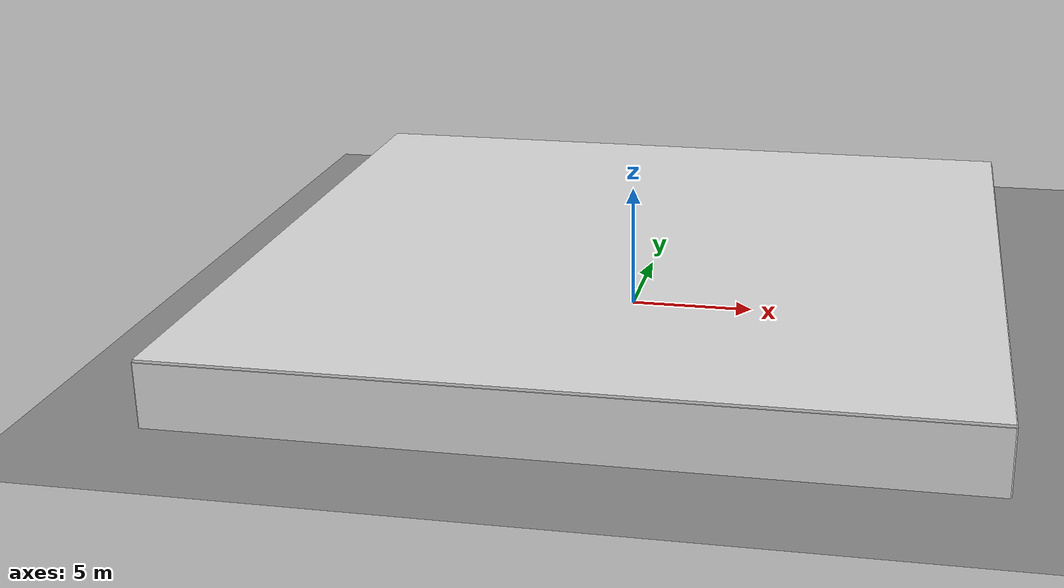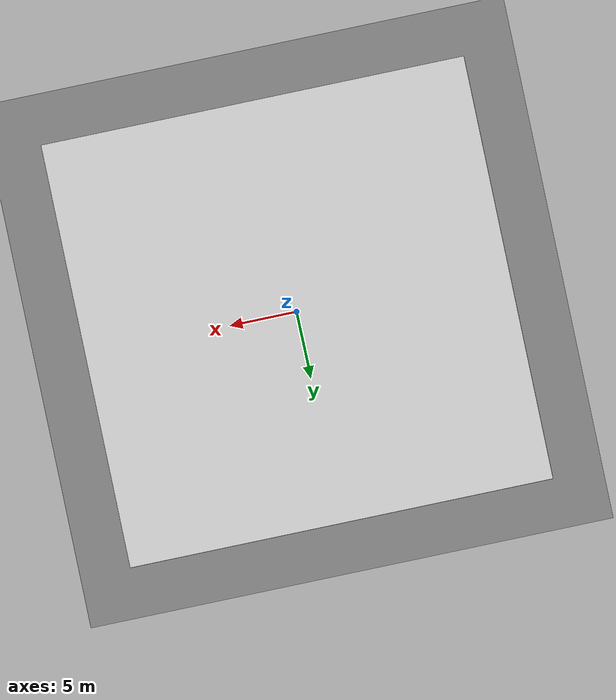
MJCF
<mujoco model="scene">

  <visual>
    <headlight diffuse="0.6 0.6 0.6" ambient="0.3 0.3 0.3" specular="0 0 0"/>
    <rgba haze="0.871 0.616 0.4 0.5"/>
    <global azimuth="-130" elevation="-20"/>
  </visual>

  <asset>
    <texture builtin="gradient" height="100" rgb1="0.9 0.9 0.9" rgb2="0.55 0.25 0.0" type="skybox" width="100"/>
    <include file="./objects/materials.xml"/>
  </asset>

    <worldbody>
        <geom name="floor" friction="1 .1 .1" pos="0 0 0" size="0 0 0.125" type="plane" material="mat_floor" condim="3" conaffinity="1" contype="1" group="2"/>
        <light cutoff="1000" diffuse="1.5 1.5 1.5" dir="-0 0 -1.3" directional="true" exponent="10" pos="0 0 10.3" specular=".1 .1 .1" castshadow="false"/>

        <geom name="wall_negx" type="box" pos="-15.0 0.0 1.25" size="0.05 15.0 1.25" material="mat_wall"/>
        <geom name="wall_posx" type="box" pos=" 15.0 0.0 1.25" size="0.05 15.0 1.25" material="mat_wall"/>
        <geom name="wall_negy" type="box" pos="0.0 -15.0 1.25" size="15.0 0.05 1.25" material="mat_wall"/>
        <geom name="wall_posy" type="box" pos="0.0  15.0 1.25" size="15.0 0.05 1.25" material="mat_wall"/>

        <geom name="ceiling" type="box"
          pos="0 0 2.55"
          size="15.0 15.0 0.05"
          material="mat_wall"
          contype="1" conaffinity="1"
        />

        <body name="chair_1" pos="2.4 1.0 0" euler="0 0 70">
          <include file="./objects/chair.xml"/>
        </body>

        <body name="bookshelf_1" pos="3.8 -1.0 0" euler="0 0 -90">
          <include file="./objects/bookshelf.xml"/>
        </body>

    </worldbody>
</mujoco>

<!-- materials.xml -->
<mujoco>
  <material name="mat_wall" rgba="0.85 0.85 0.85 1"/>
  <material name="mat_wood" rgba="0.55 0.35 0.20 1"/>
  <material name="mat_fabric" rgba="0.35 0.45 0.60 1"/>
  <material name="mat_cardboard" rgba="0.76 0.60 0.35 1"/>
  <material name="mat_metal" rgba="0.55 0.55 0.58 1" reflectance="0.3"/>

  <texture name="tex_floor" type="2d" builtin="checker" width="512" height="512"
           rgb1="0.55 0.55 0.55" rgb2="0.50 0.50 0.50"/>
  <material name="mat_floor" texture="tex_floor" texrepeat="4 4" reflectance="0.00"/>
</mujoco>

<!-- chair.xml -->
<mujoco>
  <body>
    <!-- seat -->
    <geom type="box" pos="0 0 0.25" size="0.25 0.25 0.02" material="mat_wood"/>
    <!-- backrest -->
    <geom type="box" pos="0 -0.22 0.55" size="0.25 0.03 0.30" material="mat_wood"/>
    <!-- legs -->
    <geom type="box" pos=" 0.21  0.21 0.115" size="0.02 0.02 0.115" material="mat_wood"/>
    <geom type="box" pos="-0.21  0.21 0.115" size="0.02 0.02 0.115" material="mat_wood"/>
    <geom type="box" pos=" 0.21 -0.21 0.115" size="0.02 0.02 0.115" material="mat_wood"/>
    <geom type="box" pos="-0.21 -0.21 0.115" size="0.02 0.02 0.115" material="mat_wood"/>
  </body>
</mujoco>

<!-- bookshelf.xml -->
<mujoco>
<body>
  <!-- left side panel -->
  <geom type="box" pos="-0.28 0 0.54" size="0.02 0.12 0.54" material="mat_wood"/>
  <!-- right side panel -->
  <geom type="box" pos=" 0.28 0 0.54" size="0.02 0.12 0.54" material="mat_wood"/>
  <!-- back panel -->
  <geom type="box" pos="0 0.10 0.54" size="0.30 0.02 0.54" material="mat_wood"/>
  <!-- bottom shelf -->
  <geom type="box" pos="0 0 0.02" size="0.28 0.12 0.02" material="mat_wood"/>
  <!-- shelf 1 -->
  <geom type="box" pos="0 0 0.29" size="0.28 0.12 0.02" material="mat_wood"/>
  <!-- shelf 2 -->
  <geom type="box" pos="0 0 0.56" size="0.28 0.12 0.02" material="mat_wood"/>
  <!-- shelf 3 -->
  <geom type="box" pos="0 0 0.83" size="0.28 0.12 0.02" material="mat_wood"/>
  <!-- top panel -->
  <geom type="box" pos="0 0 1.06" size="0.30 0.12 0.02" material="mat_wood"/>
</body>
</mujoco>
